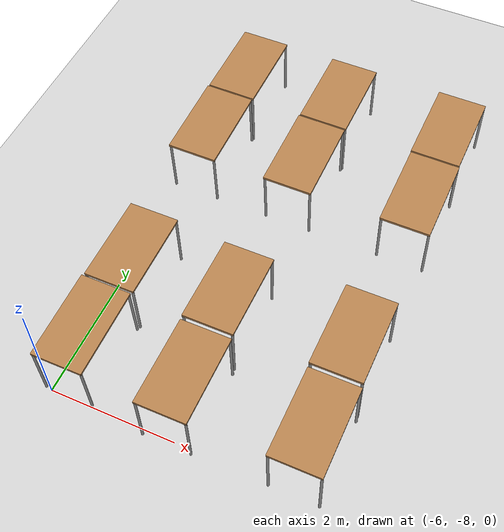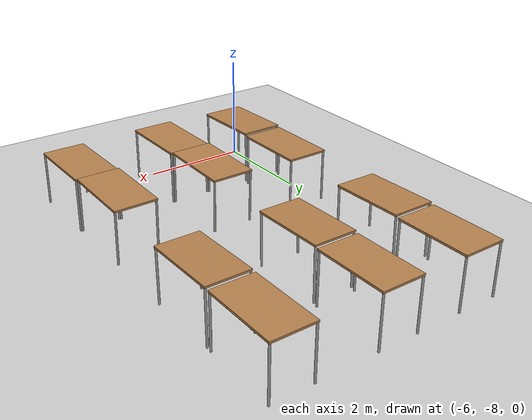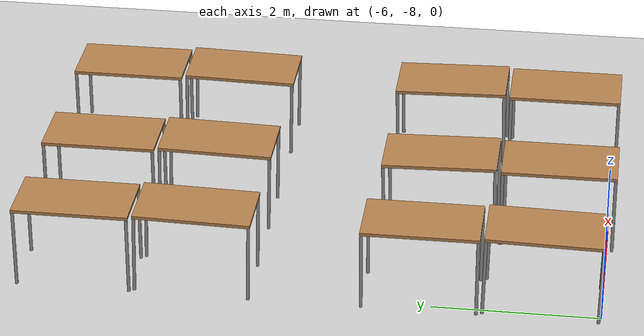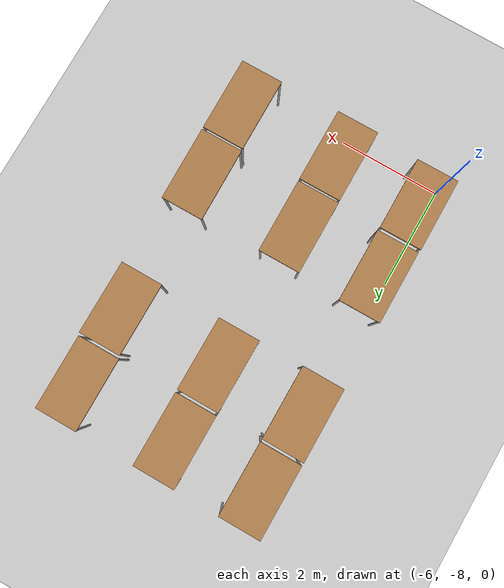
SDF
<sdf version="1.6">
 <world name="default">
  <model name="ground_plane">
   <static>1</static>
   <link name="link">
    <collision name="collision">
     <geometry><plane><normal>0 0 1</normal><size>100 100</size></plane></geometry>
     <surface><friction><ode><mu>100</mu><mu2>50</mu2></ode></friction></surface>
    </collision>
    <visual name="visual">
     <cast_shadows>0</cast_shadows>
     <geometry><plane><normal>0 0 1</normal><size>100 100</size></plane></geometry>
     <material>
      <script><uri>file://media/materials/scripts/gazebo.material</uri><name>Gazebo/Grey</name></script>
     </material>
    </visual>
   </link>
  </model>
  <model name="table_1">
   <static>0</static>
   <link name="link">
    <collision name="surface">
     <pose>0 0 1 0 -0 0</pose>
     <geometry><box><size>1.5 0.8 0.03</size></box></geometry>
     <surface><friction><ode><mu>0.6</mu><mu2>0.6</mu2></ode></friction></surface>
    </collision>
    <visual name="visual1">
     <pose>0 0 1 0 -0 0</pose>
     <geometry><box><size>1.4 0.8 0.04</size></box></geometry>
     <material>
      <script><uri>file://media/materials/scripts/gazebo.material</uri><name>Gazebo/Wood</name></script>
     </material>
    </visual>
    <collision name="front_left_leg">
     <pose>0.68 0.38 0.5 0 -0 0</pose>
     <geometry><cylinder><radius>0.02</radius><length>1</length></cylinder></geometry>
    </collision>
    <visual name="front_left_leg">
     <pose>0.68 0.38 0.5 0 -0 0</pose>
     <geometry><cylinder><radius>0.02</radius><length>1</length></cylinder></geometry>
     <material>
      <script><uri>file://media/materials/scripts/gazebo.material</uri><name>Gazebo/Grey</name></script>
     </material>
    </visual>
    <collision name="front_right_leg">
     <pose>0.68 -0.38 0.5 0 -0 0</pose>
     <geometry><cylinder><radius>0.02</radius><length>1</length></cylinder></geometry>
    </collision>
    <visual name="front_right_leg">
     <pose>0.68 -0.38 0.5 0 -0 0</pose>
     <geometry><cylinder><radius>0.02</radius><length>1</length></cylinder></geometry>
     <material>
      <script><uri>file://media/materials/scripts/gazebo.material</uri><name>Gazebo/Grey</name></script>
     </material>
    </visual>
    <collision name="back_right_leg">
     <pose>-0.68 -0.38 0.5 0 -0 0</pose>
     <geometry><cylinder><radius>0.02</radius><length>1</length></cylinder></geometry>
    </collision>
    <visual name="back_right_leg">
     <pose>-0.68 -0.38 0.5 0 -0 0</pose>
     <geometry><cylinder><radius>0.02</radius><length>1</length></cylinder></geometry>
     <material>
      <script><uri>file://media/materials/scripts/gazebo.material</uri><name>Gazebo/Grey</name></script>
     </material>
    </visual>
    <collision name="back_left_leg">
     <pose>-0.68 0.38 0.5 0 -0 0</pose>
     <geometry><cylinder><radius>0.02</radius><length>1</length></cylinder></geometry>
    </collision>
    <visual name="back_left_leg">
     <pose>-0.68 0.38 0.5 0 -0 0</pose>
     <geometry><cylinder><radius>0.02</radius><length>1</length></cylinder></geometry>
     <material>
      <script><uri>file://media/materials/scripts/gazebo.material</uri><name>Gazebo/Grey</name></script>
     </material>
    </visual>
    <inertial>
     <inertia><ixx>1</ixx><ixy>0</ixy><ixz>0</ixz><iyy>1</iyy><iyz>0</iyz><izz>1</izz></inertia>
     <mass>1</mass>
    </inertial>
   </link>
   <pose>-2.18294 -1.73071 1e-06 1e-06 1e-06 -1.5708</pose>
  </model>
  <model name="table_1_clone">
   <static>0</static>
   <link name="link">
    <collision name="surface">
     <pose>0 0 1 0 -0 0</pose>
     <geometry><box><size>1.5 0.8 0.03</size></box></geometry>
     <surface><friction><ode><mu>0.6</mu><mu2>0.6</mu2></ode></friction></surface>
    </collision>
    <visual name="visual1">
     <pose>0 0 1 0 -0 0</pose>
     <geometry><box><size>1.4 0.8 0.04</size></box></geometry>
     <material>
      <script><uri>file://media/materials/scripts/gazebo.material</uri><name>Gazebo/Wood</name></script>
     </material>
    </visual>
    <collision name="front_left_leg">
     <pose>0.68 0.38 0.5 0 -0 0</pose>
     <geometry><cylinder><radius>0.02</radius><length>1</length></cylinder></geometry>
    </collision>
    <visual name="front_left_leg">
     <pose>0.68 0.38 0.5 0 -0 0</pose>
     <geometry><cylinder><radius>0.02</radius><length>1</length></cylinder></geometry>
     <material>
      <script><uri>file://media/materials/scripts/gazebo.material</uri><name>Gazebo/Grey</name></script>
     </material>
    </visual>
    <collision name="front_right_leg">
     <pose>0.68 -0.38 0.5 0 -0 0</pose>
     <geometry><cylinder><radius>0.02</radius><length>1</length></cylinder></geometry>
    </collision>
    <visual name="front_right_leg">
     <pose>0.68 -0.38 0.5 0 -0 0</pose>
     <geometry><cylinder><radius>0.02</radius><length>1</length></cylinder></geometry>
     <material>
      <script><uri>file://media/materials/scripts/gazebo.material</uri><name>Gazebo/Grey</name></script>
     </material>
    </visual>
    <collision name="back_right_leg">
     <pose>-0.68 -0.38 0.5 0 -0 0</pose>
     <geometry><cylinder><radius>0.02</radius><length>1</length></cylinder></geometry>
    </collision>
    <visual name="back_right_leg">
     <pose>-0.68 -0.38 0.5 0 -0 0</pose>
     <geometry><cylinder><radius>0.02</radius><length>1</length></cylinder></geometry>
     <material>
      <script><uri>file://media/materials/scripts/gazebo.material</uri><name>Gazebo/Grey</name></script>
     </material>
    </visual>
    <collision name="back_left_leg">
     <pose>-0.68 0.38 0.5 0 -0 0</pose>
     <geometry><cylinder><radius>0.02</radius><length>1</length></cylinder></geometry>
    </collision>
    <visual name="back_left_leg">
     <pose>-0.68 0.38 0.5 0 -0 0</pose>
     <geometry><cylinder><radius>0.02</radius><length>1</length></cylinder></geometry>
     <material>
      <script><uri>file://media/materials/scripts/gazebo.material</uri><name>Gazebo/Grey</name></script>
     </material>
    </visual>
    <inertial>
     <inertia><ixx>1</ixx><ixy>0</ixy><ixz>0</ixz><iyy>1</iyy><iyz>0</iyz><izz>1</izz></inertia>
     <mass>1</mass>
    </inertial>
   </link>
   <pose>-4.0931 -1.73071 0 1e-06 -0 -1.5708</pose>
  </model>
  <model name="table_1_clone_0">
   <static>0</static>
   <link name="link">
    <collision name="surface">
     <pose>0 0 1 0 -0 0</pose>
     <geometry><box><size>1.5 0.8 0.03</size></box></geometry>
     <surface><friction><ode><mu>0.6</mu><mu2>0.6</mu2></ode></friction></surface>
    </collision>
    <visual name="visual1">
     <pose>0 0 1 0 -0 0</pose>
     <geometry><box><size>1.4 0.8 0.04</size></box></geometry>
     <material>
      <script><uri>file://media/materials/scripts/gazebo.material</uri><name>Gazebo/Wood</name></script>
     </material>
    </visual>
    <collision name="front_left_leg">
     <pose>0.68 0.38 0.5 0 -0 0</pose>
     <geometry><cylinder><radius>0.02</radius><length>1</length></cylinder></geometry>
    </collision>
    <visual name="front_left_leg">
     <pose>0.68 0.38 0.5 0 -0 0</pose>
     <geometry><cylinder><radius>0.02</radius><length>1</length></cylinder></geometry>
     <material>
      <script><uri>file://media/materials/scripts/gazebo.material</uri><name>Gazebo/Grey</name></script>
     </material>
    </visual>
    <collision name="front_right_leg">
     <pose>0.68 -0.38 0.5 0 -0 0</pose>
     <geometry><cylinder><radius>0.02</radius><length>1</length></cylinder></geometry>
    </collision>
    <visual name="front_right_leg">
     <pose>0.68 -0.38 0.5 0 -0 0</pose>
     <geometry><cylinder><radius>0.02</radius><length>1</length></cylinder></geometry>
     <material>
      <script><uri>file://media/materials/scripts/gazebo.material</uri><name>Gazebo/Grey</name></script>
     </material>
    </visual>
    <collision name="back_right_leg">
     <pose>-0.68 -0.38 0.5 0 -0 0</pose>
     <geometry><cylinder><radius>0.02</radius><length>1</length></cylinder></geometry>
    </collision>
    <visual name="back_right_leg">
     <pose>-0.68 -0.38 0.5 0 -0 0</pose>
     <geometry><cylinder><radius>0.02</radius><length>1</length></cylinder></geometry>
     <material>
      <script><uri>file://media/materials/scripts/gazebo.material</uri><name>Gazebo/Grey</name></script>
     </material>
    </visual>
    <collision name="back_left_leg">
     <pose>-0.68 0.38 0.5 0 -0 0</pose>
     <geometry><cylinder><radius>0.02</radius><length>1</length></cylinder></geometry>
    </collision>
    <visual name="back_left_leg">
     <pose>-0.68 0.38 0.5 0 -0 0</pose>
     <geometry><cylinder><radius>0.02</radius><length>1</length></cylinder></geometry>
     <material>
      <script><uri>file://media/materials/scripts/gazebo.material</uri><name>Gazebo/Grey</name></script>
     </material>
    </visual>
    <inertial>
     <inertia><ixx>1</ixx><ixy>0</ixy><ixz>0</ixz><iyy>1</iyy><iyz>0</iyz><izz>1</izz></inertia>
     <mass>1</mass>
    </inertial>
   </link>
   <pose>-5.73958 -1.7307 1e-06 0 1e-06 -1.5708</pose>
  </model>
  <model name="table_1_clone_1">
   <static>0</static>
   <link name="link">
    <collision name="surface">
     <pose>0 0 1 0 -0 0</pose>
     <geometry><box><size>1.5 0.8 0.03</size></box></geometry>
     <surface><friction><ode><mu>0.6</mu><mu2>0.6</mu2></ode></friction></surface>
    </collision>
    <visual name="visual1">
     <pose>0 0 1 0 -0 0</pose>
     <geometry><box><size>1.4 0.8 0.04</size></box></geometry>
     <material>
      <script><uri>file://media/materials/scripts/gazebo.material</uri><name>Gazebo/Wood</name></script>
     </material>
    </visual>
    <collision name="front_left_leg">
     <pose>0.68 0.38 0.5 0 -0 0</pose>
     <geometry><cylinder><radius>0.02</radius><length>1</length></cylinder></geometry>
    </collision>
    <visual name="front_left_leg">
     <pose>0.68 0.38 0.5 0 -0 0</pose>
     <geometry><cylinder><radius>0.02</radius><length>1</length></cylinder></geometry>
     <material>
      <script><uri>file://media/materials/scripts/gazebo.material</uri><name>Gazebo/Grey</name></script>
     </material>
    </visual>
    <collision name="front_right_leg">
     <pose>0.68 -0.38 0.5 0 -0 0</pose>
     <geometry><cylinder><radius>0.02</radius><length>1</length></cylinder></geometry>
    </collision>
    <visual name="front_right_leg">
     <pose>0.68 -0.38 0.5 0 -0 0</pose>
     <geometry><cylinder><radius>0.02</radius><length>1</length></cylinder></geometry>
     <material>
      <script><uri>file://media/materials/scripts/gazebo.material</uri><name>Gazebo/Grey</name></script>
     </material>
    </visual>
    <collision name="back_right_leg">
     <pose>-0.68 -0.38 0.5 0 -0 0</pose>
     <geometry><cylinder><radius>0.02</radius><length>1</length></cylinder></geometry>
    </collision>
    <visual name="back_right_leg">
     <pose>-0.68 -0.38 0.5 0 -0 0</pose>
     <geometry><cylinder><radius>0.02</radius><length>1</length></cylinder></geometry>
     <material>
      <script><uri>file://media/materials/scripts/gazebo.material</uri><name>Gazebo/Grey</name></script>
     </material>
    </visual>
    <collision name="back_left_leg">
     <pose>-0.68 0.38 0.5 0 -0 0</pose>
     <geometry><cylinder><radius>0.02</radius><length>1</length></cylinder></geometry>
    </collision>
    <visual name="back_left_leg">
     <pose>-0.68 0.38 0.5 0 -0 0</pose>
     <geometry><cylinder><radius>0.02</radius><length>1</length></cylinder></geometry>
     <material>
      <script><uri>file://media/materials/scripts/gazebo.material</uri><name>Gazebo/Grey</name></script>
     </material>
    </visual>
    <inertial>
     <inertia><ixx>1</ixx><ixy>0</ixy><ixz>0</ixz><iyy>1</iyy><iyz>0</iyz><izz>1</izz></inertia>
     <mass>1</mass>
    </inertial>
   </link>
   <pose>-2.1681 -3.15994 0.015106 7e-06 0.021588 -1.5708</pose>
  </model>
  <model name="table_1_clone_2">
   <static>0</static>
   <link name="link">
    <collision name="surface">
     <pose>0 0 1 0 -0 0</pose>
     <geometry><box><size>1.5 0.8 0.03</size></box></geometry>
     <surface><friction><ode><mu>0.6</mu><mu2>0.6</mu2></ode></friction></surface>
    </collision>
    <visual name="visual1">
     <pose>0 0 1 0 -0 0</pose>
     <geometry><box><size>1.4 0.8 0.04</size></box></geometry>
     <material>
      <script><uri>file://media/materials/scripts/gazebo.material</uri><name>Gazebo/Wood</name></script>
     </material>
    </visual>
    <collision name="front_left_leg">
     <pose>0.68 0.38 0.5 0 -0 0</pose>
     <geometry><cylinder><radius>0.02</radius><length>1</length></cylinder></geometry>
    </collision>
    <visual name="front_left_leg">
     <pose>0.68 0.38 0.5 0 -0 0</pose>
     <geometry><cylinder><radius>0.02</radius><length>1</length></cylinder></geometry>
     <material>
      <script><uri>file://media/materials/scripts/gazebo.material</uri><name>Gazebo/Grey</name></script>
     </material>
    </visual>
    <collision name="front_right_leg">
     <pose>0.68 -0.38 0.5 0 -0 0</pose>
     <geometry><cylinder><radius>0.02</radius><length>1</length></cylinder></geometry>
    </collision>
    <visual name="front_right_leg">
     <pose>0.68 -0.38 0.5 0 -0 0</pose>
     <geometry><cylinder><radius>0.02</radius><length>1</length></cylinder></geometry>
     <material>
      <script><uri>file://media/materials/scripts/gazebo.material</uri><name>Gazebo/Grey</name></script>
     </material>
    </visual>
    <collision name="back_right_leg">
     <pose>-0.68 -0.38 0.5 0 -0 0</pose>
     <geometry><cylinder><radius>0.02</radius><length>1</length></cylinder></geometry>
    </collision>
    <visual name="back_right_leg">
     <pose>-0.68 -0.38 0.5 0 -0 0</pose>
     <geometry><cylinder><radius>0.02</radius><length>1</length></cylinder></geometry>
     <material>
      <script><uri>file://media/materials/scripts/gazebo.material</uri><name>Gazebo/Grey</name></script>
     </material>
    </visual>
    <collision name="back_left_leg">
     <pose>-0.68 0.38 0.5 0 -0 0</pose>
     <geometry><cylinder><radius>0.02</radius><length>1</length></cylinder></geometry>
    </collision>
    <visual name="back_left_leg">
     <pose>-0.68 0.38 0.5 0 -0 0</pose>
     <geometry><cylinder><radius>0.02</radius><length>1</length></cylinder></geometry>
     <material>
      <script><uri>file://media/materials/scripts/gazebo.material</uri><name>Gazebo/Grey</name></script>
     </material>
    </visual>
    <inertial>
     <inertia><ixx>1</ixx><ixy>0</ixy><ixz>0</ixz><iyy>1</iyy><iyz>0</iyz><izz>1</izz></inertia>
     <mass>1</mass>
    </inertial>
   </link>
   <pose>-4.09592 -3.15993 0.015109 -2e-06 0.021585 -1.5708</pose>
  </model>
  <model name="table_1_clone_3">
   <static>0</static>
   <link name="link">
    <collision name="surface">
     <pose>0 0 1 0 -0 0</pose>
     <geometry><box><size>1.5 0.8 0.03</size></box></geometry>
     <surface><friction><ode><mu>0.6</mu><mu2>0.6</mu2></ode></friction></surface>
    </collision>
    <visual name="visual1">
     <pose>0 0 1 0 -0 0</pose>
     <geometry><box><size>1.4 0.8 0.04</size></box></geometry>
     <material>
      <script><uri>file://media/materials/scripts/gazebo.material</uri><name>Gazebo/Wood</name></script>
     </material>
    </visual>
    <collision name="front_left_leg">
     <pose>0.68 0.38 0.5 0 -0 0</pose>
     <geometry><cylinder><radius>0.02</radius><length>1</length></cylinder></geometry>
    </collision>
    <visual name="front_left_leg">
     <pose>0.68 0.38 0.5 0 -0 0</pose>
     <geometry><cylinder><radius>0.02</radius><length>1</length></cylinder></geometry>
     <material>
      <script><uri>file://media/materials/scripts/gazebo.material</uri><name>Gazebo/Grey</name></script>
     </material>
    </visual>
    <collision name="front_right_leg">
     <pose>0.68 -0.38 0.5 0 -0 0</pose>
     <geometry><cylinder><radius>0.02</radius><length>1</length></cylinder></geometry>
    </collision>
    <visual name="front_right_leg">
     <pose>0.68 -0.38 0.5 0 -0 0</pose>
     <geometry><cylinder><radius>0.02</radius><length>1</length></cylinder></geometry>
     <material>
      <script><uri>file://media/materials/scripts/gazebo.material</uri><name>Gazebo/Grey</name></script>
     </material>
    </visual>
    <collision name="back_right_leg">
     <pose>-0.68 -0.38 0.5 0 -0 0</pose>
     <geometry><cylinder><radius>0.02</radius><length>1</length></cylinder></geometry>
    </collision>
    <visual name="back_right_leg">
     <pose>-0.68 -0.38 0.5 0 -0 0</pose>
     <geometry><cylinder><radius>0.02</radius><length>1</length></cylinder></geometry>
     <material>
      <script><uri>file://media/materials/scripts/gazebo.material</uri><name>Gazebo/Grey</name></script>
     </material>
    </visual>
    <collision name="back_left_leg">
     <pose>-0.68 0.38 0.5 0 -0 0</pose>
     <geometry><cylinder><radius>0.02</radius><length>1</length></cylinder></geometry>
    </collision>
    <visual name="back_left_leg">
     <pose>-0.68 0.38 0.5 0 -0 0</pose>
     <geometry><cylinder><radius>0.02</radius><length>1</length></cylinder></geometry>
     <material>
      <script><uri>file://media/materials/scripts/gazebo.material</uri><name>Gazebo/Grey</name></script>
     </material>
    </visual>
    <inertial>
     <inertia><ixx>1</ixx><ixy>0</ixy><ixz>0</ixz><iyy>1</iyy><iyz>0</iyz><izz>1</izz></inertia>
     <mass>1</mass>
    </inertial>
   </link>
   <pose>-5.73997 -3.15994 0.015107 1e-06 0.021587 -1.5708</pose>
  </model>
  <model name="table_1_clone_4">
   <static>0</static>
   <link name="link">
    <collision name="surface">
     <pose>0 0 1 0 -0 0</pose>
     <geometry><box><size>1.5 0.8 0.03</size></box></geometry>
     <surface><friction><ode><mu>0.6</mu><mu2>0.6</mu2></ode></friction></surface>
    </collision>
    <visual name="visual1">
     <pose>0 0 1 0 -0 0</pose>
     <geometry><box><size>1.4 0.8 0.04</size></box></geometry>
     <material>
      <script><uri>file://media/materials/scripts/gazebo.material</uri><name>Gazebo/Wood</name></script>
     </material>
    </visual>
    <collision name="front_left_leg">
     <pose>0.68 0.38 0.5 0 -0 0</pose>
     <geometry><cylinder><radius>0.02</radius><length>1</length></cylinder></geometry>
    </collision>
    <visual name="front_left_leg">
     <pose>0.68 0.38 0.5 0 -0 0</pose>
     <geometry><cylinder><radius>0.02</radius><length>1</length></cylinder></geometry>
     <material>
      <script><uri>file://media/materials/scripts/gazebo.material</uri><name>Gazebo/Grey</name></script>
     </material>
    </visual>
    <collision name="front_right_leg">
     <pose>0.68 -0.38 0.5 0 -0 0</pose>
     <geometry><cylinder><radius>0.02</radius><length>1</length></cylinder></geometry>
    </collision>
    <visual name="front_right_leg">
     <pose>0.68 -0.38 0.5 0 -0 0</pose>
     <geometry><cylinder><radius>0.02</radius><length>1</length></cylinder></geometry>
     <material>
      <script><uri>file://media/materials/scripts/gazebo.material</uri><name>Gazebo/Grey</name></script>
     </material>
    </visual>
    <collision name="back_right_leg">
     <pose>-0.68 -0.38 0.5 0 -0 0</pose>
     <geometry><cylinder><radius>0.02</radius><length>1</length></cylinder></geometry>
    </collision>
    <visual name="back_right_leg">
     <pose>-0.68 -0.38 0.5 0 -0 0</pose>
     <geometry><cylinder><radius>0.02</radius><length>1</length></cylinder></geometry>
     <material>
      <script><uri>file://media/materials/scripts/gazebo.material</uri><name>Gazebo/Grey</name></script>
     </material>
    </visual>
    <collision name="back_left_leg">
     <pose>-0.68 0.38 0.5 0 -0 0</pose>
     <geometry><cylinder><radius>0.02</radius><length>1</length></cylinder></geometry>
    </collision>
    <visual name="back_left_leg">
     <pose>-0.68 0.38 0.5 0 -0 0</pose>
     <geometry><cylinder><radius>0.02</radius><length>1</length></cylinder></geometry>
     <material>
      <script><uri>file://media/materials/scripts/gazebo.material</uri><name>Gazebo/Grey</name></script>
     </material>
    </visual>
    <inertial>
     <inertia><ixx>1</ixx><ixy>0</ixy><ixz>0</ixz><iyy>1</iyy><iyz>0</iyz><izz>1</izz></inertia>
     <mass>1</mass>
    </inertial>
   </link>
   <pose>-2.16591 -7.34816 -1e-06 0 1e-06 -1.56593</pose>
  </model>
  <model name="table_1_clone_5">
   <static>0</static>
   <link name="link">
    <collision name="surface">
     <pose>0 0 1 0 -0 0</pose>
     <geometry><box><size>1.5 0.8 0.03</size></box></geometry>
     <surface><friction><ode><mu>0.6</mu><mu2>0.6</mu2></ode></friction></surface>
    </collision>
    <visual name="visual1">
     <pose>0 0 1 0 -0 0</pose>
     <geometry><box><size>1.4 0.8 0.04</size></box></geometry>
     <material>
      <script><uri>file://media/materials/scripts/gazebo.material</uri><name>Gazebo/Wood</name></script>
     </material>
    </visual>
    <collision name="front_left_leg">
     <pose>0.68 0.38 0.5 0 -0 0</pose>
     <geometry><cylinder><radius>0.02</radius><length>1</length></cylinder></geometry>
    </collision>
    <visual name="front_left_leg">
     <pose>0.68 0.38 0.5 0 -0 0</pose>
     <geometry><cylinder><radius>0.02</radius><length>1</length></cylinder></geometry>
     <material>
      <script><uri>file://media/materials/scripts/gazebo.material</uri><name>Gazebo/Grey</name></script>
     </material>
    </visual>
    <collision name="front_right_leg">
     <pose>0.68 -0.38 0.5 0 -0 0</pose>
     <geometry><cylinder><radius>0.02</radius><length>1</length></cylinder></geometry>
    </collision>
    <visual name="front_right_leg">
     <pose>0.68 -0.38 0.5 0 -0 0</pose>
     <geometry><cylinder><radius>0.02</radius><length>1</length></cylinder></geometry>
     <material>
      <script><uri>file://media/materials/scripts/gazebo.material</uri><name>Gazebo/Grey</name></script>
     </material>
    </visual>
    <collision name="back_right_leg">
     <pose>-0.68 -0.38 0.5 0 -0 0</pose>
     <geometry><cylinder><radius>0.02</radius><length>1</length></cylinder></geometry>
    </collision>
    <visual name="back_right_leg">
     <pose>-0.68 -0.38 0.5 0 -0 0</pose>
     <geometry><cylinder><radius>0.02</radius><length>1</length></cylinder></geometry>
     <material>
      <script><uri>file://media/materials/scripts/gazebo.material</uri><name>Gazebo/Grey</name></script>
     </material>
    </visual>
    <collision name="back_left_leg">
     <pose>-0.68 0.38 0.5 0 -0 0</pose>
     <geometry><cylinder><radius>0.02</radius><length>1</length></cylinder></geometry>
    </collision>
    <visual name="back_left_leg">
     <pose>-0.68 0.38 0.5 0 -0 0</pose>
     <geometry><cylinder><radius>0.02</radius><length>1</length></cylinder></geometry>
     <material>
      <script><uri>file://media/materials/scripts/gazebo.material</uri><name>Gazebo/Grey</name></script>
     </material>
    </visual>
    <inertial>
     <inertia><ixx>1</ixx><ixy>0</ixy><ixz>0</ixz><iyy>1</iyy><iyz>0</iyz><izz>1</izz></inertia>
     <mass>1</mass>
    </inertial>
   </link>
   <pose>-2.18135 -5.919 0.015101 1e-06 -0.021587 -1.56593</pose>
  </model>
  <model name="table_1_clone_6">
   <static>0</static>
   <link name="link">
    <collision name="surface">
     <pose>0 0 1 0 -0 0</pose>
     <geometry><box><size>1.5 0.8 0.03</size></box></geometry>
     <surface><friction><ode><mu>0.6</mu><mu2>0.6</mu2></ode></friction></surface>
    </collision>
    <visual name="visual1">
     <pose>0 0 1 0 -0 0</pose>
     <geometry><box><size>1.4 0.8 0.04</size></box></geometry>
     <material>
      <script><uri>file://media/materials/scripts/gazebo.material</uri><name>Gazebo/Wood</name></script>
     </material>
    </visual>
    <collision name="front_left_leg">
     <pose>0.68 0.38 0.5 0 -0 0</pose>
     <geometry><cylinder><radius>0.02</radius><length>1</length></cylinder></geometry>
    </collision>
    <visual name="front_left_leg">
     <pose>0.68 0.38 0.5 0 -0 0</pose>
     <geometry><cylinder><radius>0.02</radius><length>1</length></cylinder></geometry>
     <material>
      <script><uri>file://media/materials/scripts/gazebo.material</uri><name>Gazebo/Grey</name></script>
     </material>
    </visual>
    <collision name="front_right_leg">
     <pose>0.68 -0.38 0.5 0 -0 0</pose>
     <geometry><cylinder><radius>0.02</radius><length>1</length></cylinder></geometry>
    </collision>
    <visual name="front_right_leg">
     <pose>0.68 -0.38 0.5 0 -0 0</pose>
     <geometry><cylinder><radius>0.02</radius><length>1</length></cylinder></geometry>
     <material>
      <script><uri>file://media/materials/scripts/gazebo.material</uri><name>Gazebo/Grey</name></script>
     </material>
    </visual>
    <collision name="back_right_leg">
     <pose>-0.68 -0.38 0.5 0 -0 0</pose>
     <geometry><cylinder><radius>0.02</radius><length>1</length></cylinder></geometry>
    </collision>
    <visual name="back_right_leg">
     <pose>-0.68 -0.38 0.5 0 -0 0</pose>
     <geometry><cylinder><radius>0.02</radius><length>1</length></cylinder></geometry>
     <material>
      <script><uri>file://media/materials/scripts/gazebo.material</uri><name>Gazebo/Grey</name></script>
     </material>
    </visual>
    <collision name="back_left_leg">
     <pose>-0.68 0.38 0.5 0 -0 0</pose>
     <geometry><cylinder><radius>0.02</radius><length>1</length></cylinder></geometry>
    </collision>
    <visual name="back_left_leg">
     <pose>-0.68 0.38 0.5 0 -0 0</pose>
     <geometry><cylinder><radius>0.02</radius><length>1</length></cylinder></geometry>
     <material>
      <script><uri>file://media/materials/scripts/gazebo.material</uri><name>Gazebo/Grey</name></script>
     </material>
    </visual>
    <inertial>
     <inertia><ixx>1</ixx><ixy>0</ixy><ixz>0</ixz><iyy>1</iyy><iyz>0</iyz><izz>1</izz></inertia>
     <mass>1</mass>
    </inertial>
   </link>
   <pose>-4.0918 -7.38076 0 0 0 -1.56603</pose>
  </model>
  <model name="table_1_clone_6_clone">
   <static>0</static>
   <link name="link">
    <collision name="surface">
     <pose>0 0 1 0 -0 0</pose>
     <geometry><box><size>1.5 0.8 0.03</size></box></geometry>
     <surface><friction><ode><mu>0.6</mu><mu2>0.6</mu2></ode></friction></surface>
    </collision>
    <visual name="visual1">
     <pose>0 0 1 0 -0 0</pose>
     <geometry><box><size>1.4 0.8 0.04</size></box></geometry>
     <material>
      <script><uri>file://media/materials/scripts/gazebo.material</uri><name>Gazebo/Wood</name></script>
     </material>
    </visual>
    <collision name="front_left_leg">
     <pose>0.68 0.38 0.5 0 -0 0</pose>
     <geometry><cylinder><radius>0.02</radius><length>1</length></cylinder></geometry>
    </collision>
    <visual name="front_left_leg">
     <pose>0.68 0.38 0.5 0 -0 0</pose>
     <geometry><cylinder><radius>0.02</radius><length>1</length></cylinder></geometry>
     <material>
      <script><uri>file://media/materials/scripts/gazebo.material</uri><name>Gazebo/Grey</name></script>
     </material>
    </visual>
    <collision name="front_right_leg">
     <pose>0.68 -0.38 0.5 0 -0 0</pose>
     <geometry><cylinder><radius>0.02</radius><length>1</length></cylinder></geometry>
    </collision>
    <visual name="front_right_leg">
     <pose>0.68 -0.38 0.5 0 -0 0</pose>
     <geometry><cylinder><radius>0.02</radius><length>1</length></cylinder></geometry>
     <material>
      <script><uri>file://media/materials/scripts/gazebo.material</uri><name>Gazebo/Grey</name></script>
     </material>
    </visual>
    <collision name="back_right_leg">
     <pose>-0.68 -0.38 0.5 0 -0 0</pose>
     <geometry><cylinder><radius>0.02</radius><length>1</length></cylinder></geometry>
    </collision>
    <visual name="back_right_leg">
     <pose>-0.68 -0.38 0.5 0 -0 0</pose>
     <geometry><cylinder><radius>0.02</radius><length>1</length></cylinder></geometry>
     <material>
      <script><uri>file://media/materials/scripts/gazebo.material</uri><name>Gazebo/Grey</name></script>
     </material>
    </visual>
    <collision name="back_left_leg">
     <pose>-0.68 0.38 0.5 0 -0 0</pose>
     <geometry><cylinder><radius>0.02</radius><length>1</length></cylinder></geometry>
    </collision>
    <visual name="back_left_leg">
     <pose>-0.68 0.38 0.5 0 -0 0</pose>
     <geometry><cylinder><radius>0.02</radius><length>1</length></cylinder></geometry>
     <material>
      <script><uri>file://media/materials/scripts/gazebo.material</uri><name>Gazebo/Grey</name></script>
     </material>
    </visual>
    <inertial>
     <inertia><ixx>1</ixx><ixy>0</ixy><ixz>0</ixz><iyy>1</iyy><iyz>0</iyz><izz>1</izz></inertia>
     <mass>1</mass>
    </inertial>
   </link>
   <pose>-4.10283 -5.95156 0.015112 5e-06 -0.021576 -1.56603</pose>
  </model>
  <model name="table_1_clone_6_clone_0">
   <static>0</static>
   <link name="link">
    <collision name="surface">
     <pose>0 0 1 0 -0 0</pose>
     <geometry><box><size>1.5 0.8 0.03</size></box></geometry>
     <surface><friction><ode><mu>0.6</mu><mu2>0.6</mu2></ode></friction></surface>
    </collision>
    <visual name="visual1">
     <pose>0 0 1 0 -0 0</pose>
     <geometry><box><size>1.4 0.8 0.04</size></box></geometry>
     <material>
      <script><uri>file://media/materials/scripts/gazebo.material</uri><name>Gazebo/Wood</name></script>
     </material>
    </visual>
    <collision name="front_left_leg">
     <pose>0.68 0.38 0.5 0 -0 0</pose>
     <geometry><cylinder><radius>0.02</radius><length>1</length></cylinder></geometry>
    </collision>
    <visual name="front_left_leg">
     <pose>0.68 0.38 0.5 0 -0 0</pose>
     <geometry><cylinder><radius>0.02</radius><length>1</length></cylinder></geometry>
     <material>
      <script><uri>file://media/materials/scripts/gazebo.material</uri><name>Gazebo/Grey</name></script>
     </material>
    </visual>
    <collision name="front_right_leg">
     <pose>0.68 -0.38 0.5 0 -0 0</pose>
     <geometry><cylinder><radius>0.02</radius><length>1</length></cylinder></geometry>
    </collision>
    <visual name="front_right_leg">
     <pose>0.68 -0.38 0.5 0 -0 0</pose>
     <geometry><cylinder><radius>0.02</radius><length>1</length></cylinder></geometry>
     <material>
      <script><uri>file://media/materials/scripts/gazebo.material</uri><name>Gazebo/Grey</name></script>
     </material>
    </visual>
    <collision name="back_right_leg">
     <pose>-0.68 -0.38 0.5 0 -0 0</pose>
     <geometry><cylinder><radius>0.02</radius><length>1</length></cylinder></geometry>
    </collision>
    <visual name="back_right_leg">
     <pose>-0.68 -0.38 0.5 0 -0 0</pose>
     <geometry><cylinder><radius>0.02</radius><length>1</length></cylinder></geometry>
     <material>
      <script><uri>file://media/materials/scripts/gazebo.material</uri><name>Gazebo/Grey</name></script>
     </material>
    </visual>
    <collision name="back_left_leg">
     <pose>-0.68 0.38 0.5 0 -0 0</pose>
     <geometry><cylinder><radius>0.02</radius><length>1</length></cylinder></geometry>
    </collision>
    <visual name="back_left_leg">
     <pose>-0.68 0.38 0.5 0 -0 0</pose>
     <geometry><cylinder><radius>0.02</radius><length>1</length></cylinder></geometry>
     <material>
      <script><uri>file://media/materials/scripts/gazebo.material</uri><name>Gazebo/Grey</name></script>
     </material>
    </visual>
    <inertial>
     <inertia><ixx>1</ixx><ixy>0</ixy><ixz>0</ixz><iyy>1</iyy><iyz>0</iyz><izz>1</izz></inertia>
     <mass>1</mass>
    </inertial>
   </link>
   <pose>-5.72385 -7.28926 0.015107 -0 0.021583 -1.56622</pose>
  </model>
  <model name="table_1_clone_6_clone_1">
   <static>0</static>
   <link name="link">
    <collision name="surface">
     <pose>0 0 1 0 -0 0</pose>
     <geometry><box><size>1.5 0.8 0.03</size></box></geometry>
     <surface><friction><ode><mu>0.6</mu><mu2>0.6</mu2></ode></friction></surface>
    </collision>
    <visual name="visual1">
     <pose>0 0 1 0 -0 0</pose>
     <geometry><box><size>1.4 0.8 0.04</size></box></geometry>
     <material>
      <script><uri>file://media/materials/scripts/gazebo.material</uri><name>Gazebo/Wood</name></script>
     </material>
    </visual>
    <collision name="front_left_leg">
     <pose>0.68 0.38 0.5 0 -0 0</pose>
     <geometry><cylinder><radius>0.02</radius><length>1</length></cylinder></geometry>
    </collision>
    <visual name="front_left_leg">
     <pose>0.68 0.38 0.5 0 -0 0</pose>
     <geometry><cylinder><radius>0.02</radius><length>1</length></cylinder></geometry>
     <material>
      <script><uri>file://media/materials/scripts/gazebo.material</uri><name>Gazebo/Grey</name></script>
     </material>
    </visual>
    <collision name="front_right_leg">
     <pose>0.68 -0.38 0.5 0 -0 0</pose>
     <geometry><cylinder><radius>0.02</radius><length>1</length></cylinder></geometry>
    </collision>
    <visual name="front_right_leg">
     <pose>0.68 -0.38 0.5 0 -0 0</pose>
     <geometry><cylinder><radius>0.02</radius><length>1</length></cylinder></geometry>
     <material>
      <script><uri>file://media/materials/scripts/gazebo.material</uri><name>Gazebo/Grey</name></script>
     </material>
    </visual>
    <collision name="back_right_leg">
     <pose>-0.68 -0.38 0.5 0 -0 0</pose>
     <geometry><cylinder><radius>0.02</radius><length>1</length></cylinder></geometry>
    </collision>
    <visual name="back_right_leg">
     <pose>-0.68 -0.38 0.5 0 -0 0</pose>
     <geometry><cylinder><radius>0.02</radius><length>1</length></cylinder></geometry>
     <material>
      <script><uri>file://media/materials/scripts/gazebo.material</uri><name>Gazebo/Grey</name></script>
     </material>
    </visual>
    <collision name="back_left_leg">
     <pose>-0.68 0.38 0.5 0 -0 0</pose>
     <geometry><cylinder><radius>0.02</radius><length>1</length></cylinder></geometry>
    </collision>
    <visual name="back_left_leg">
     <pose>-0.68 0.38 0.5 0 -0 0</pose>
     <geometry><cylinder><radius>0.02</radius><length>1</length></cylinder></geometry>
     <material>
      <script><uri>file://media/materials/scripts/gazebo.material</uri><name>Gazebo/Grey</name></script>
     </material>
    </visual>
    <inertial>
     <inertia><ixx>1</ixx><ixy>0</ixy><ixz>0</ixz><iyy>1</iyy><iyz>0</iyz><izz>1</izz></inertia>
     <mass>1</mass>
    </inertial>
   </link>
   <pose>-5.72018 -5.86001 0 0 0 -1.56623</pose>
  </model>
 </world>
</sdf>
